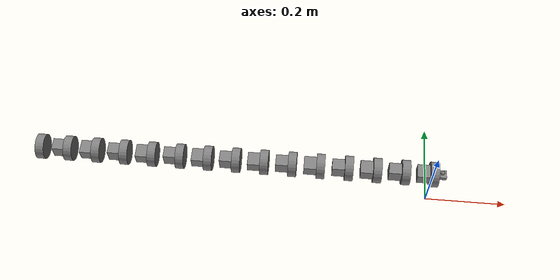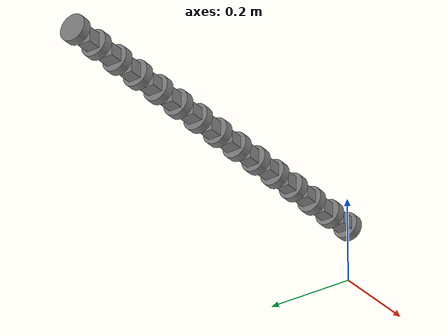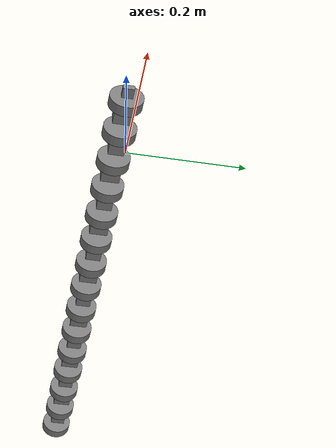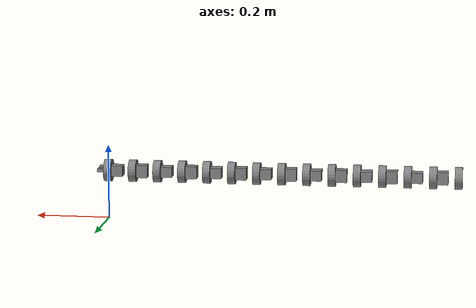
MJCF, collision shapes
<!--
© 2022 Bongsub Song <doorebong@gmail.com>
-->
<!-- All right reserved -->
<!-- Description : BRM snake robot Mujoco simulation xml and axis alligned version. -->
<!-- v20220830 : Circular frame version -->
<!-- v20221103 : Body Frame Alligned -->
<!-- v20240122 : mesh contact is convert to default shape -->

<mujoco model="horcrux">

    <asset>
        <mesh name="head_link" file="./asset/Head.stl"/>
        <mesh name="v_link" file="./asset/Link2.stl"/>
        <mesh name="h_link" file="./asset/Link3.stl"/>
        <mesh name="tail_link" file="./asset/Tail.stl"/>
    </asset>

    <default>
        <default class="joint_defaults">
            <joint type="hinge" pos="0.0388 0 0" limited="true" range="-75 75" damping="0.13" stiffness="0" armature="0.01" />
        </default>
        <default class="C-frame">
            <geom type="cylinder" mass="0.05" condim="6" size="0.03 0.01" rgba="0.5 0.5 0.5 0.1" priority="1" friction="0.7 0.015 0.001" margin="0.0018" pos="0 0 0" euler="0 90 0"/>
        </default>
        <default class="H-link">
            <geom type="box" mass="0.1" condim="6" size="0.01425 0.017 0.02325" rgba="0.5 0.5 0.5 0.1" priority="1" friction="0.7 0.015 0.001" pos="-0.017 0 0" euler="0 90 0"/>
        </default>
        <default class="V-link">
            <geom type="box" mass="0.1" condim="6" size="0.01425 0.017 0.02325" rgba="0.5 0.5 0.5 0.1" priority="1" friction="0.7 0.015 0.001" pos="-0.017 0 0" euler="90 90 0"/>
        </default>
        <default class="Mesh-head">
            <geom type="mesh" mesh="head_link" mass="0" pos="-0.029 0 0" euler="180 0 0" contype="0" conaffinity="0" group="2" rgba="0.7 0.4 0.4 1"/>
        </default>
        <default class="Mesh-H-link">
            <geom type="mesh" mesh="h_link" mass="0" pos="-0.029 0 0" euler="180 0 0" contype="0" conaffinity="0" group="2" rgba="0.7 0.4 0.4 1"/>
        </default>
        <default class="Mesh-V-link">
            <geom type="mesh" mesh="v_link" mass="0" pos="-0.029 0 0" euler="0 0 0" contype="0" conaffinity="0" group="2" rgba="0.4 0.4 0.7 1"/>
        </default>
        <default class="Mesh-tail">
            <geom type="mesh" mesh="tail_link" mass="0" pos="0.001875 0 0" euler="0 0 0" contype="0" conaffinity="0" group="2" rgba="0.7 0.4 0.4 1"/>
        </default>
    </default>

    <worldbody>
        <light directional="false" diffuse="1 1 1" specular="0 0 0" pos="0 0 15" dir="0 0 -1" castshadow="false"/>

        <!-- Celing camera -->
        <body>
            <camera name="ceiling" mode="fixed" fovy="90" pos="0 0 2.5" euler="0 0 0"/>
        </body>

        <body name="head" pos="0 0 0.1318" euler="0 0 0">
            <camera name="head_mount" mode="fixed" fovy="120" pos="0.02 0 0.0" euler="0 -90 -90"/>
            <geom type="box" mass="0.01" condim="6" size="0.03 0.01 0.005"/>
            <site name="s_head" pos="0.02 0 0.01" euler="0 0 0"/>
            <freejoint name="root"/>
            <geom class="Mesh-head"/>
            <geom class="C-frame"/>
            <geom class="H-link"/>
            <body name="link1" pos="-0.0678 0 0" euler="0 0 0">
                <joint class="joint_defaults" name="joint1" axis="0 1 0"/>
                <geom class="Mesh-V-link"/>
                <geom class="C-frame"/>
                <geom class="V-link"/>
                <body name="link2" pos="-0.0678 0 0" euler="0 0 0">
                    <joint class="joint_defaults" name="joint2" axis="0 0 1"/>
                    <geom class="Mesh-H-link"/>
                    <geom class="C-frame"/>
                    <geom class="H-link"/>
                    <body name="link3" pos="-0.0678 0 0" euler="0 0 0">
                        <joint class="joint_defaults" name="joint3" axis="0 1 0"/>
                        <geom class="Mesh-V-link"/>
                        <geom class="C-frame"/>
                        <geom class="V-link"/>
                        <body name="link4" pos="-0.0678 0 0" euler="0 0 0">
                            <joint class="joint_defaults" name="joint4" axis="0 0 1"/>
                            <geom class="Mesh-H-link"/>
                            <geom class="C-frame"/>
                            <geom class="H-link"/>
                            <body name="link5" pos="-0.0678 0 0" euler="0 0 0">
                                <joint class="joint_defaults" name="joint5" axis="0 1 0"/>
                                <geom class="Mesh-V-link"/>
                                <geom class="C-frame"/>
                                <geom class="V-link"/>
                                <body name="link6" pos="-0.0678 0 0" euler="0 0 0">
                                    <joint class="joint_defaults" name="joint6" axis="0 0 1"/>
                                    <geom class="Mesh-H-link"/>
                                    <geom class="C-frame"/>
                                    <geom class="H-link"/>
                                    <body name="link7" pos="-0.0678 0 0" euler="0 0 0">
                                        <joint class="joint_defaults" name="joint7" axis="0 1 0"/>
                                        <geom class="Mesh-V-link"/>
                                        <geom class="C-frame"/>
                                        <geom class="V-link"/>
                                        <body name="link8" pos="-0.0678 0 0" euler="0 0 0">
                                            <joint class="joint_defaults" name="joint8" axis="0 0 1"/>
                                            <geom class="Mesh-H-link"/>
                                            <geom class="C-frame"/>
                                            <geom class="H-link"/>
                                            <body name="link9" pos="-0.0678 0 0" euler="0 0 0">
                                                <joint class="joint_defaults" name="joint9" axis="0 1 0"/>
                                                <geom class="Mesh-V-link"/>
                                                <geom class="C-frame"/>
                                                <geom class="V-link"/>
                                                <body name="link10" pos="-0.0678 0 0" euler="0 0 0">
                                                    <joint class="joint_defaults" name="joint10" axis="0 0 1"/>
                                                    <geom class="Mesh-H-link"/>
                                                    <geom class="C-frame"/>
                                                    <geom class="H-link"/>
                                                    <body name="link11" pos="-0.0678 0 0" euler="0 0 0">
                                                        <joint class="joint_defaults" name="joint11" axis="0 1 0"/>
                                                        <geom class="Mesh-V-link"/>
                                                        <geom class="C-frame"/>
                                                        <geom class="V-link"/>
                                                        <body name="link12" pos="-0.0678 0 0" euler="0 0 0">
                                                            <joint class="joint_defaults" name="joint12" axis="0 0 1"/>
                                                            <geom class="Mesh-H-link"/>
                                                            <geom class="C-frame"/>
                                                            <geom class="H-link"/>
                                                            <body name="link13" pos="-0.0678 0 0" euler="0 0 0">
                                                                <joint class="joint_defaults" name="joint13" axis="0 1 0"/>
                                                                <geom class="Mesh-V-link"/>
                                                                <geom class="C-frame"/>
                                                                <geom class="V-link"/>
                                                                <body name="tail" pos="-0.0678 0 0" euler="0 0 0">
                                                                    <joint class="joint_defaults" name="joint14" axis="0 0 1"/>
                                                                    <geom class="Mesh-tail"/>
                                                                    <geom class="C-frame"/>
                                                                </body>
                                                            </body>
                                                        </body>
                                                    </body>
                                                </body>
                                            </body>
                                        </body>
                                    </body>
                                </body>
                            </body>
                        </body>
                    </body>
                </body>
            </body>
            <body>
                <camera name="com" mode="trackcom" fovy="45" pos="-1.8 0 1.8" euler="0 -45 -90"/>
            </body>
        </body>
    </worldbody>

    <!-- Motor -->
    <actuator>
        <motor name="servo_1"  ctrllimited="true" ctrlrange="-3.5 3.5" gear="1" joint="joint1"/>
        <motor name="servo_2"  ctrllimited="true" ctrlrange="-3.5 3.5" gear="1" joint="joint2"/>
        <motor name="servo_3"  ctrllimited="true" ctrlrange="-3.5 3.5" gear="1" joint="joint3"/>
        <motor name="servo_4"  ctrllimited="true" ctrlrange="-3.5 3.5" gear="1" joint="joint4"/>
        <motor name="servo_5"  ctrllimited="true" ctrlrange="-3.5 3.5" gear="1" joint="joint5"/>
        <motor name="servo_6"  ctrllimited="true" ctrlrange="-3.5 3.5" gear="1" joint="joint6"/>
        <motor name="servo_7"  ctrllimited="true" ctrlrange="-3.5 3.5" gear="1" joint="joint7"/>
        <motor name="servo_8"  ctrllimited="true" ctrlrange="-3.5 3.5" gear="1" joint="joint8"/>
        <motor name="servo_9"  ctrllimited="true" ctrlrange="-3.5 3.5" gear="1" joint="joint9"/>
        <motor name="servo_10" ctrllimited="true" ctrlrange="-3.5 3.5" gear="1" joint="joint10"/>
        <motor name="servo_11" ctrllimited="true" ctrlrange="-3.5 3.5" gear="1" joint="joint11"/>
        <motor name="servo_12" ctrllimited="true" ctrlrange="-3.5 3.5" gear="1" joint="joint12"/>
        <motor name="servo_13" ctrllimited="true" ctrlrange="-3.5 3.5" gear="1" joint="joint13"/>
        <motor name="servo_14" ctrllimited="true" ctrlrange="-3.5 3.5" gear="1" joint="joint14"/>
    </actuator>

    <!-- Servo -->
    <sensor>
        <jointpos name="pos_joint1"  joint="joint1" />
        <jointpos name="pos_joint2"  joint="joint2" />
        <jointpos name="pos_joint3"  joint="joint3" />
        <jointpos name="pos_joint4"  joint="joint4" />
        <jointpos name="pos_joint5"  joint="joint5" />
        <jointpos name="pos_joint6"  joint="joint6" />
        <jointpos name="pos_joint7"  joint="joint7" />
        <jointpos name="pos_joint8"  joint="joint8" />
        <jointpos name="pos_joint9"  joint="joint9" />
        <jointpos name="pos_joint10" joint="joint10"/>
        <jointpos name="pos_joint11" joint="joint11"/>
        <jointpos name="pos_joint12" joint="joint12"/>
        <jointpos name="pos_joint13" joint="joint13"/>
        <jointpos name="pos_joint14" joint="joint14"/>

        <jointvel name="vel_joint1"  joint="joint1" />
        <jointvel name="vel_joint2"  joint="joint2" />
        <jointvel name="vel_joint3"  joint="joint3" />
        <jointvel name="vel_joint4"  joint="joint4" />
        <jointvel name="vel_joint5"  joint="joint5" />
        <jointvel name="vel_joint6"  joint="joint6" />
        <jointvel name="vel_joint7"  joint="joint7" />
        <jointvel name="vel_joint8"  joint="joint8" />
        <jointvel name="vel_joint9"  joint="joint9" />
        <jointvel name="vel_joint10" joint="joint10"/>
        <jointvel name="vel_joint11" joint="joint11"/>
        <jointvel name="vel_joint12" joint="joint12"/>
        <jointvel name="vel_joint13" joint="joint13"/>
        <jointvel name="vel_joint14" joint="joint14"/>

        <framequat name="head_quat" objtype="site" objname="s_head"/>
        <gyro name="head_angvel" site="s_head"/>
        <accelerometer name="head_linacc" site="s_head"/>

    </sensor>

</mujoco>
